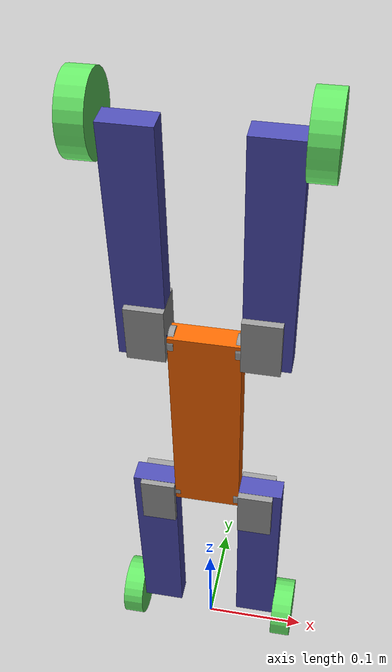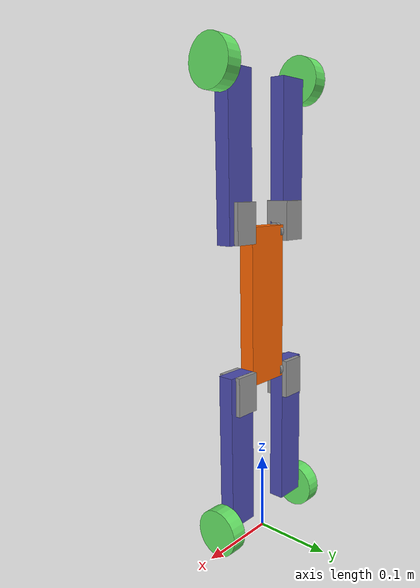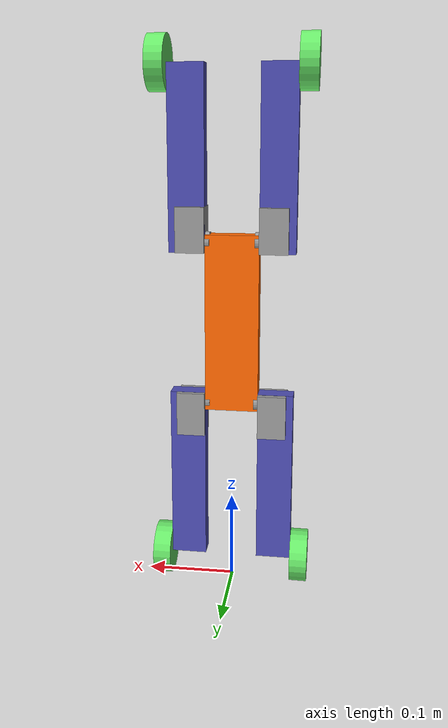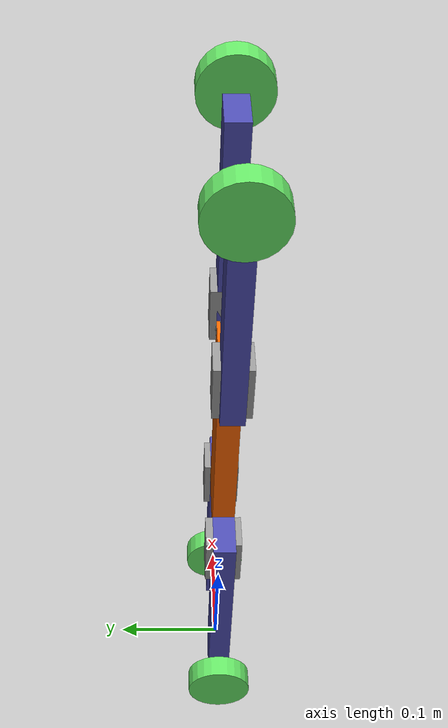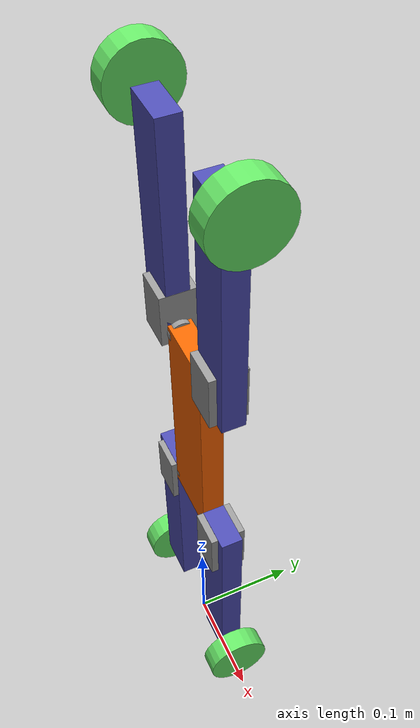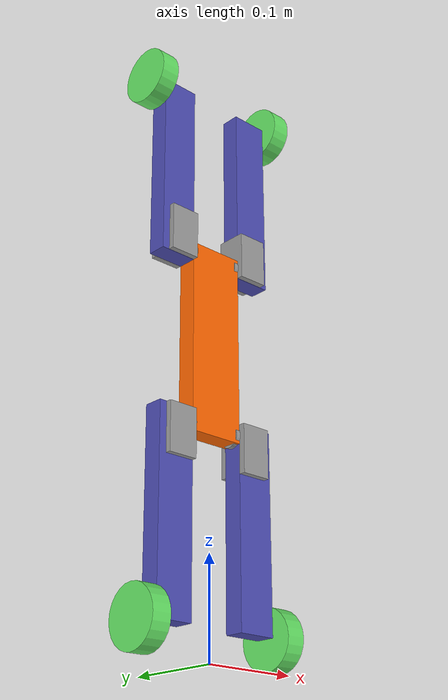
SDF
<?xml version='1.0'?>
<sdf version='1.6'>
  <model name='rovservo'>
    <link name='left_leg'>
      <inertial>
        <mass>1</mass>
        <inertia>
          <ixx>0.166667</ixx>
          <ixy>0</ixy>
          <ixz>0</ixz>
          <iyy>0.166667</iyy>
          <iyz>0</iyz>
          <izz>0.166667</izz>
        </inertia>
        <pose frame=''>0 0 0 0 -0 0</pose>
      </inertial>
      <pose frame=''>-0.05 0 0.13 0 -0 0</pose>
      <gravity>1</gravity>
      <self_collide>0</self_collide>
      <kinematic>0</kinematic>
      <enable_wind>0</enable_wind>
      <visual name='visual'>
        <pose frame=''>0 0 0 0 -0 0</pose>
        <geometry>
          <box>
            <size>0.04 0.02 0.2</size>
          </box>
        </geometry>
        <material>
          <lighting>1</lighting>
          <script>
            <uri>file://media/materials/scripts/gazebo.material</uri>
            <name>Gazebo/Grey</name>
          </script>
          <shader type='vertex'>
            <normal_map>__default__</normal_map>
          </shader>
          <ambient>0.3 0.3 0.7 1</ambient>
          <diffuse>0.7 0.7 0.7 1</diffuse>
          <specular>0.01 0.01 0.01 1</specular>
          <emissive>0 0 0 1</emissive>
        </material>
        <transparency>0</transparency>
        <cast_shadows>1</cast_shadows>
      </visual>
      <collision name='collision'>
        <laser_retro>0</laser_retro>
        <max_contacts>10</max_contacts>
        <pose frame=''>0 0 0 0 -0 0</pose>
        <geometry>
          <box>
            <size>0.04 0.02 0.2</size>
          </box>
        </geometry>
        <surface>
          <friction>
            <ode>
              <mu>1</mu>
              <mu2>1</mu2>
              <fdir1>0 0 0</fdir1>
              <slip1>0</slip1>
              <slip2>0</slip2>
            </ode>
            <torsional>
              <coefficient>1</coefficient>
              <patch_radius>0</patch_radius>
              <surface_radius>0</surface_radius>
              <use_patch_radius>1</use_patch_radius>
              <ode>
                <slip>0</slip>
              </ode>
            </torsional>
          </friction>
          <bounce>
            <restitution_coefficient>0</restitution_coefficient>
            <threshold>1e+06</threshold>
          </bounce>
          <contact>
            <collide_without_contact>0</collide_without_contact>
            <collide_without_contact_bitmask>1</collide_without_contact_bitmask>
            <collide_bitmask>1</collide_bitmask>
            <ode>
              <soft_cfm>0</soft_cfm>
              <soft_erp>0.2</soft_erp>
              <kp>1e+13</kp>
              <kd>1</kd>
              <max_vel>0.01</max_vel>
              <min_depth>0</min_depth>
            </ode>
            <bullet>
              <split_impulse>1</split_impulse>
              <split_impulse_penetration_threshold>-0.01</split_impulse_penetration_threshold>
              <soft_cfm>0</soft_cfm>
              <soft_erp>0.2</soft_erp>
              <kp>1e+13</kp>
              <kd>1</kd>
            </bullet>
          </contact>
        </surface>
      </collision>
    </link>
    <link name='body'>
      <inertial>
        <mass>1</mass>
        <inertia>
          <ixx>0.166667</ixx>
          <ixy>0</ixy>
          <ixz>0</ixz>
          <iyy>0.166667</iyy>
          <iyz>0</iyz>
          <izz>0.166667</izz>
        </inertia>
        <pose frame=''>0 0 0 0 -0 0</pose>
      </inertial>
      <pose frame=''>0 0 0.31 0 -0 0</pose>
      <gravity>1</gravity>
      <self_collide>0</self_collide>
      <kinematic>0</kinematic>
      <enable_wind>0</enable_wind>
      <visual name='visual'>
        <pose frame=''>0 0 0 0 -0 0</pose>
        <geometry>
          <box>
            <size>0.06 0.02 0.2</size>
          </box>
        </geometry>
        <material>
          <lighting>1</lighting>
          <script>
            <uri>file://media/materials/scripts/gazebo.material</uri>
            <name>Gazebo/Grey</name>
          </script>
          <shader type='vertex'>
            <normal_map>__default__</normal_map>
          </shader>
          <ambient>1 0.4 0 1</ambient>
          <diffuse>0.7 0.7 0.7 1</diffuse>
          <specular>0.01 0.01 0.01 1</specular>
          <emissive>0 0 0 1</emissive>
        </material>
        <transparency>0</transparency>
        <cast_shadows>1</cast_shadows>
      </visual>
      <collision name='collision'>
        <laser_retro>0</laser_retro>
        <max_contacts>10</max_contacts>
        <pose frame=''>0 0 0 0 -0 0</pose>
        <geometry>
          <box>
            <size>0.06 0.02 0.2</size>
          </box>
        </geometry>
        <surface>
          <friction>
            <ode>
              <mu>1</mu>
              <mu2>1</mu2>
              <fdir1>0 0 0</fdir1>
              <slip1>0</slip1>
              <slip2>0</slip2>
            </ode>
            <torsional>
              <coefficient>1</coefficient>
              <patch_radius>0</patch_radius>
              <surface_radius>0</surface_radius>
              <use_patch_radius>1</use_patch_radius>
              <ode>
                <slip>0</slip>
              </ode>
            </torsional>
          </friction>
          <bounce>
            <restitution_coefficient>0</restitution_coefficient>
            <threshold>1e+06</threshold>
          </bounce>
          <contact>
            <collide_without_contact>0</collide_without_contact>
            <collide_without_contact_bitmask>1</collide_without_contact_bitmask>
            <collide_bitmask>1</collide_bitmask>
            <ode>
              <soft_cfm>0</soft_cfm>
              <soft_erp>0.2</soft_erp>
              <kp>1e+13</kp>
              <kd>1</kd>
              <max_vel>0.01</max_vel>
              <min_depth>0</min_depth>
            </ode>
            <bullet>
              <split_impulse>1</split_impulse>
              <split_impulse_penetration_threshold>-0.01</split_impulse_penetration_threshold>
              <soft_cfm>0</soft_cfm>
              <soft_erp>0.2</soft_erp>
              <kp>1e+13</kp>
              <kd>1</kd>
            </bullet>
          </contact>
        </surface>
      </collision>
    </link>
    <link name='left_arm'>
      <inertial>
        <mass>1</mass>
        <inertia>
          <ixx>0.166667</ixx>
          <ixy>0</ixy>
          <ixz>0</ixz>
          <iyy>0.166667</iyy>
          <iyz>0</iyz>
          <izz>0.166667</izz>
        </inertia>
        <pose frame=''>0 0 0 0 -0 0</pose>
      </inertial>
      <pose frame=''>-0.05 0 0.49 0 -0 0</pose>
      <gravity>1</gravity>
      <self_collide>0</self_collide>
      <kinematic>0</kinematic>
      <enable_wind>0</enable_wind>
      <visual name='visual'>
        <pose frame=''>0 0 0 0 -0 0</pose>
        <geometry>
          <box>
            <size>0.04 0.02 0.2</size>
          </box>
        </geometry>
        <material>
          <lighting>1</lighting>
          <script>
            <uri>file://media/materials/scripts/gazebo.material</uri>
            <name>Gazebo/Grey</name>
          </script>
          <shader type='vertex'>
            <normal_map>__default__</normal_map>
          </shader>
          <ambient>0.3 0.3 0.7 1</ambient>
          <diffuse>0.7 0.7 0.7 1</diffuse>
          <specular>0.01 0.01 0.01 1</specular>
          <emissive>0 0 0 1</emissive>
        </material>
        <transparency>0</transparency>
        <cast_shadows>1</cast_shadows>
      </visual>
      <collision name='collision'>
        <laser_retro>0</laser_retro>
        <max_contacts>10</max_contacts>
        <pose frame=''>0 0 0 0 -0 0</pose>
        <geometry>
          <box>
            <size>0.04 0.02 0.2</size>
          </box>
        </geometry>
        <surface>
          <friction>
            <ode>
              <mu>1</mu>
              <mu2>1</mu2>
              <fdir1>0 0 0</fdir1>
              <slip1>0</slip1>
              <slip2>0</slip2>
            </ode>
            <torsional>
              <coefficient>1</coefficient>
              <patch_radius>0</patch_radius>
              <surface_radius>0</surface_radius>
              <use_patch_radius>1</use_patch_radius>
              <ode>
                <slip>0</slip>
              </ode>
            </torsional>
          </friction>
          <bounce>
            <restitution_coefficient>0</restitution_coefficient>
            <threshold>1e+06</threshold>
          </bounce>
          <contact>
            <collide_without_contact>0</collide_without_contact>
            <collide_without_contact_bitmask>1</collide_without_contact_bitmask>
            <collide_bitmask>1</collide_bitmask>
            <ode>
              <soft_cfm>0</soft_cfm>
              <soft_erp>0.2</soft_erp>
              <kp>1e+13</kp>
              <kd>1</kd>
              <max_vel>0.01</max_vel>
              <min_depth>0</min_depth>
            </ode>
            <bullet>
              <split_impulse>1</split_impulse>
              <split_impulse_penetration_threshold>-0.01</split_impulse_penetration_threshold>
              <soft_cfm>0</soft_cfm>
              <soft_erp>0.2</soft_erp>
              <kp>1e+13</kp>
              <kd>1</kd>
            </bullet>
          </contact>
        </surface>
      </collision>
    </link>
    <link name='left_arm_wheel'>
      <inertial>
        <mass>1</mass>
        <inertia>
          <ixx>0.145833</ixx>
          <ixy>0</ixy>
          <ixz>0</ixz>
          <iyy>0.145833</iyy>
          <iyz>0</iyz>
          <izz>0.125</izz>
        </inertia>
        <pose frame=''>0 0 0 0 -0 0</pose>
      </inertial>
      <pose frame=''>-0.08 0 0.59 0 -0 0</pose>
      <gravity>1</gravity>
      <self_collide>1</self_collide>
      <kinematic>0</kinematic>
      <enable_wind>0</enable_wind>
      <visual name='visual'>
        <pose frame=''>0 0 0 0 1.5608 0</pose>
        <geometry>
          <cylinder>
            <radius>0.03</radius>
            <length>0.02</length>
          </cylinder>
        </geometry>
        <material>
          <lighting>1</lighting>
          <script>
            <uri>file://media/materials/scripts/gazebo.material</uri>
            <name>Gazebo/Grey</name>
          </script>
          <shader type='vertex'>
            <normal_map>__default__</normal_map>
          </shader>
          <ambient>0.3 0.3 0.3 1</ambient>
          <diffuse>0.4 0.9 0.4 1</diffuse>
          <specular>0.01 0.01 0.01 1</specular>
          <emissive>0 0 0 1</emissive>
        </material>
        <transparency>0</transparency>
        <cast_shadows>1</cast_shadows>
      </visual>
      <collision name='collision'>
        <laser_retro>0</laser_retro>
        <max_contacts>10</max_contacts>
        <pose frame=''>0 0 0 0 1.5608 0</pose>
        <geometry>
          <cylinder>
            <radius>0.03</radius>
            <length>0.02</length>
          </cylinder>
        </geometry>
        <surface>
          <friction>
            <ode>
              <mu>1</mu>
              <mu2>1</mu2>
              <fdir1>0 0 0</fdir1>
              <slip1>0</slip1>
              <slip2>0</slip2>
            </ode>
            <torsional>
              <coefficient>1</coefficient>
              <patch_radius>0</patch_radius>
              <surface_radius>0</surface_radius>
              <use_patch_radius>1</use_patch_radius>
              <ode>
                <slip>0</slip>
              </ode>
            </torsional>
          </friction>
          <bounce>
            <restitution_coefficient>0</restitution_coefficient>
            <threshold>1e+06</threshold>
          </bounce>
          <contact>
            <collide_without_contact>0</collide_without_contact>
            <collide_without_contact_bitmask>1</collide_without_contact_bitmask>
            <collide_bitmask>1</collide_bitmask>
            <ode>
              <soft_cfm>0</soft_cfm>
              <soft_erp>0.2</soft_erp>
              <kp>1e+13</kp>
              <kd>1</kd>
              <max_vel>0.01</max_vel>
              <min_depth>0</min_depth>
            </ode>
            <bullet>
              <split_impulse>1</split_impulse>
              <split_impulse_penetration_threshold>-0.01</split_impulse_penetration_threshold>
              <soft_cfm>0</soft_cfm>
              <soft_erp>0.2</soft_erp>
              <kp>1e+13</kp>
              <kd>1</kd>
            </bullet>
          </contact>
        </surface>
      </collision>
    </link>
    <link name='left_leg_wheel'>
      <inertial>
        <mass>1</mass>
        <inertia>
          <ixx>0.145833</ixx>
          <ixy>0</ixy>
          <ixz>0</ixz>
          <iyy>0.145833</iyy>
          <iyz>0</iyz>
          <izz>0.125</izz>
        </inertia>
        <pose frame=''>0 0 0 0 -0 0</pose>
      </inertial>
      <pose frame=''>-0.08 0 0.03 0 -0 0</pose>
      <gravity>1</gravity>
      <self_collide>1</self_collide>
      <kinematic>0</kinematic>
      <enable_wind>0</enable_wind>
      <visual name='visual'>
        <pose frame=''>0 0 0 0 1.5608 0</pose>
        <geometry>
          <cylinder>
            <radius>0.03</radius>
            <length>0.02</length>
          </cylinder>
        </geometry>
        <material>
          <lighting>1</lighting>
          <script>
            <uri>file://media/materials/scripts/gazebo.material</uri>
            <name>Gazebo/Grey</name>
          </script>
          <shader type='vertex'>
            <normal_map>__default__</normal_map>
          </shader>
          <ambient>0.3 0.3 0.3 1</ambient>
          <diffuse>0.4 0.9 0.4 1</diffuse>
          <specular>0.01 0.01 0.01 1</specular>
          <emissive>0 0 0 1</emissive>
        </material>
        <transparency>0</transparency>
        <cast_shadows>1</cast_shadows>
      </visual>
      <collision name='collision'>
        <laser_retro>0</laser_retro>
        <max_contacts>10</max_contacts>
        <pose frame=''>0 0 0 0 1.5608 0</pose>
        <geometry>
          <cylinder>
            <radius>0.03</radius>
            <length>0.02</length>
          </cylinder>
        </geometry>
        <surface>
          <friction>
            <ode>
              <mu>1</mu>
              <mu2>1</mu2>
              <fdir1>0 0 0</fdir1>
              <slip1>0</slip1>
              <slip2>0</slip2>
            </ode>
            <torsional>
              <coefficient>1</coefficient>
              <patch_radius>0</patch_radius>
              <surface_radius>0</surface_radius>
              <use_patch_radius>1</use_patch_radius>
              <ode>
                <slip>0</slip>
              </ode>
            </torsional>
          </friction>
          <bounce>
            <restitution_coefficient>0</restitution_coefficient>
            <threshold>1e+06</threshold>
          </bounce>
          <contact>
            <collide_without_contact>0</collide_without_contact>
            <collide_without_contact_bitmask>1</collide_without_contact_bitmask>
            <collide_bitmask>1</collide_bitmask>
            <ode>
              <soft_cfm>0</soft_cfm>
              <soft_erp>0.2</soft_erp>
              <kp>1e+13</kp>
              <kd>1</kd>
              <max_vel>0.01</max_vel>
              <min_depth>0</min_depth>
            </ode>
            <bullet>
              <split_impulse>1</split_impulse>
              <split_impulse_penetration_threshold>-0.01</split_impulse_penetration_threshold>
              <soft_cfm>0</soft_cfm>
              <soft_erp>0.2</soft_erp>
              <kp>1e+13</kp>
              <kd>1</kd>
            </bullet>
          </contact>
        </surface>
      </collision>
    </link>
    <link name='right_arm'>
      <inertial>
        <mass>1</mass>
        <inertia>
          <ixx>0.166667</ixx>
          <ixy>0</ixy>
          <ixz>0</ixz>
          <iyy>0.166667</iyy>
          <iyz>0</iyz>
          <izz>0.166667</izz>
        </inertia>
        <pose frame=''>0 0 0 0 -0 0</pose>
      </inertial>
      <pose frame=''>0.05 0 0.49 0 -0 0</pose>
      <gravity>1</gravity>
      <self_collide>0</self_collide>
      <kinematic>0</kinematic>
      <enable_wind>0</enable_wind>
      <visual name='visual'>
        <pose frame=''>0 0 0 0 -0 0</pose>
        <geometry>
          <box>
            <size>0.04 0.02 0.2</size>
          </box>
        </geometry>
        <material>
          <lighting>1</lighting>
          <script>
            <uri>file://media/materials/scripts/gazebo.material</uri>
            <name>Gazebo/Grey</name>
          </script>
          <shader type='vertex'>
            <normal_map>__default__</normal_map>
          </shader>
          <ambient>0.3 0.3 0.7 1</ambient>
          <diffuse>0.7 0.7 0.7 1</diffuse>
          <specular>0.01 0.01 0.01 1</specular>
          <emissive>0 0 0 1</emissive>
        </material>
        <transparency>0</transparency>
        <cast_shadows>1</cast_shadows>
      </visual>
      <collision name='collision'>
        <laser_retro>0</laser_retro>
        <max_contacts>10</max_contacts>
        <pose frame=''>0 0 0 0 -0 0</pose>
        <geometry>
          <box>
            <size>0.04 0.02 0.2</size>
          </box>
        </geometry>
        <surface>
          <friction>
            <ode>
              <mu>1</mu>
              <mu2>1</mu2>
              <fdir1>0 0 0</fdir1>
              <slip1>0</slip1>
              <slip2>0</slip2>
            </ode>
            <torsional>
              <coefficient>1</coefficient>
              <patch_radius>0</patch_radius>
              <surface_radius>0</surface_radius>
              <use_patch_radius>1</use_patch_radius>
              <ode>
                <slip>0</slip>
              </ode>
            </torsional>
          </friction>
          <bounce>
            <restitution_coefficient>0</restitution_coefficient>
            <threshold>1e+06</threshold>
          </bounce>
          <contact>
            <collide_without_contact>0</collide_without_contact>
            <collide_without_contact_bitmask>1</collide_without_contact_bitmask>
            <collide_bitmask>1</collide_bitmask>
            <ode>
              <soft_cfm>0</soft_cfm>
              <soft_erp>0.2</soft_erp>
              <kp>1e+13</kp>
              <kd>1</kd>
              <max_vel>0.01</max_vel>
              <min_depth>0</min_depth>
            </ode>
            <bullet>
              <split_impulse>1</split_impulse>
              <split_impulse_penetration_threshold>-0.01</split_impulse_penetration_threshold>
              <soft_cfm>0</soft_cfm>
              <soft_erp>0.2</soft_erp>
              <kp>1e+13</kp>
              <kd>1</kd>
            </bullet>
          </contact>
        </surface>
      </collision>
    </link>
    <link name='right_arm_wheel'>
      <inertial>
        <mass>1</mass>
        <inertia>
          <ixx>0.145833</ixx>
          <ixy>0</ixy>
          <ixz>0</ixz>
          <iyy>0.145833</iyy>
          <iyz>0</iyz>
          <izz>0.125</izz>
        </inertia>
        <pose frame=''>0 0 0 0 -0 0</pose>
      </inertial>
      <pose frame=''>0.08 0 0.59 0 -0 0</pose>
      <gravity>1</gravity>
      <self_collide>1</self_collide>
      <kinematic>0</kinematic>
      <enable_wind>0</enable_wind>
      <visual name='visual'>
        <pose frame=''>0 0 0 0 1.5608 0</pose>
        <geometry>
          <cylinder>
            <radius>0.03</radius>
            <length>0.02</length>
          </cylinder>
        </geometry>
        <material>
          <lighting>1</lighting>
          <script>
            <uri>file://media/materials/scripts/gazebo.material</uri>
            <name>Gazebo/Grey</name>
          </script>
          <shader type='vertex'>
            <normal_map>__default__</normal_map>
          </shader>
          <ambient>0.3 0.3 0.3 1</ambient>
          <diffuse>0.4 0.9 0.4 1</diffuse>
          <specular>0.01 0.01 0.01 1</specular>
          <emissive>0 0 0 1</emissive>
        </material>
        <transparency>0</transparency>
        <cast_shadows>1</cast_shadows>
      </visual>
      <collision name='collision'>
        <laser_retro>0</laser_retro>
        <max_contacts>10</max_contacts>
        <pose frame=''>0 0 0 0 1.5608 0</pose>
        <geometry>
          <cylinder>
            <radius>0.03</radius>
            <length>0.02</length>
          </cylinder>
        </geometry>
        <surface>
          <friction>
            <ode>
              <mu>1</mu>
              <mu2>1</mu2>
              <fdir1>0 0 0</fdir1>
              <slip1>0</slip1>
              <slip2>0</slip2>
            </ode>
            <torsional>
              <coefficient>1</coefficient>
              <patch_radius>0</patch_radius>
              <surface_radius>0</surface_radius>
              <use_patch_radius>1</use_patch_radius>
              <ode>
                <slip>0</slip>
              </ode>
            </torsional>
          </friction>
          <bounce>
            <restitution_coefficient>0</restitution_coefficient>
            <threshold>1e+06</threshold>
          </bounce>
          <contact>
            <collide_without_contact>0</collide_without_contact>
            <collide_without_contact_bitmask>1</collide_without_contact_bitmask>
            <collide_bitmask>1</collide_bitmask>
            <ode>
              <soft_cfm>0</soft_cfm>
              <soft_erp>0.2</soft_erp>
              <kp>1e+13</kp>
              <kd>1</kd>
              <max_vel>0.01</max_vel>
              <min_depth>0</min_depth>
            </ode>
            <bullet>
              <split_impulse>1</split_impulse>
              <split_impulse_penetration_threshold>-0.01</split_impulse_penetration_threshold>
              <soft_cfm>0</soft_cfm>
              <soft_erp>0.2</soft_erp>
              <kp>1e+13</kp>
              <kd>1</kd>
            </bullet>
          </contact>
        </surface>
      </collision>
    </link>
    <link name='right_leg'>
      <inertial>
        <mass>1</mass>
        <inertia>
          <ixx>0.166667</ixx>
          <ixy>0</ixy>
          <ixz>0</ixz>
          <iyy>0.166667</iyy>
          <iyz>0</iyz>
          <izz>0.166667</izz>
        </inertia>
        <pose frame=''>0 0 0 0 -0 0</pose>
      </inertial>
      <pose frame=''>0.05 0 0.13 0 -0 0</pose>
      <gravity>1</gravity>
      <self_collide>0</self_collide>
      <kinematic>0</kinematic>
      <enable_wind>0</enable_wind>
      <visual name='visual'>
        <pose frame=''>0 0 0 0 -0 0</pose>
        <geometry>
          <box>
            <size>0.04 0.02 0.2</size>
          </box>
        </geometry>
        <material>
          <lighting>1</lighting>
          <script>
            <uri>file://media/materials/scripts/gazebo.material</uri>
            <name>Gazebo/Grey</name>
          </script>
          <shader type='vertex'>
            <normal_map>__default__</normal_map>
          </shader>
          <ambient>0.3 0.3 0.7 1</ambient>
          <diffuse>0.7 0.7 0.7 1</diffuse>
          <specular>0.01 0.01 0.01 1</specular>
          <emissive>0 0 0 1</emissive>
        </material>
        <transparency>0</transparency>
        <cast_shadows>1</cast_shadows>
      </visual>
      <collision name='collision'>
        <laser_retro>0</laser_retro>
        <max_contacts>10</max_contacts>
        <pose frame=''>0 0 0 0 -0 0</pose>
        <geometry>
          <box>
            <size>0.04 0.02 0.2</size>
          </box>
        </geometry>
        <surface>
          <friction>
            <ode>
              <mu>1</mu>
              <mu2>1</mu2>
              <fdir1>0 0 0</fdir1>
              <slip1>0</slip1>
              <slip2>0</slip2>
            </ode>
            <torsional>
              <coefficient>1</coefficient>
              <patch_radius>0</patch_radius>
              <surface_radius>0</surface_radius>
              <use_patch_radius>1</use_patch_radius>
              <ode>
                <slip>0</slip>
              </ode>
            </torsional>
          </friction>
          <bounce>
            <restitution_coefficient>0</restitution_coefficient>
            <threshold>1e+06</threshold>
          </bounce>
          <contact>
            <collide_without_contact>0</collide_without_contact>
            <collide_without_contact_bitmask>1</collide_without_contact_bitmask>
            <collide_bitmask>1</collide_bitmask>
            <ode>
              <soft_cfm>0</soft_cfm>
              <soft_erp>0.2</soft_erp>
              <kp>1e+13</kp>
              <kd>1</kd>
              <max_vel>0.01</max_vel>
              <min_depth>0</min_depth>
            </ode>
            <bullet>
              <split_impulse>1</split_impulse>
              <split_impulse_penetration_threshold>-0.01</split_impulse_penetration_threshold>
              <soft_cfm>0</soft_cfm>
              <soft_erp>0.2</soft_erp>
              <kp>1e+13</kp>
              <kd>1</kd>
            </bullet>
          </contact>
        </surface>
      </collision>
    </link>
    <link name='right_leg_wheel'>
      <inertial>
        <mass>1</mass>
        <inertia>
          <ixx>0.145833</ixx>
          <ixy>0</ixy>
          <ixz>0</ixz>
          <iyy>0.145833</iyy>
          <iyz>0</iyz>
          <izz>0.125</izz>
        </inertia>
        <pose frame=''>0 0 0 0 -0 0</pose>
      </inertial>
      <pose frame=''>0.08 0 0.03 0 -0 0</pose>
      <gravity>1</gravity>
      <self_collide>1</self_collide>
      <kinematic>0</kinematic>
      <enable_wind>0</enable_wind>
      <visual name='visual'>
        <pose frame=''>0 0 0 0 1.5608 0</pose>
        <geometry>
          <cylinder>
            <radius>0.03</radius>
            <length>0.02</length>
          </cylinder>
        </geometry>
        <material>
          <lighting>1</lighting>
          <script>
            <uri>file://media/materials/scripts/gazebo.material</uri>
            <name>Gazebo/Grey</name>
          </script>
          <shader type='vertex'>
            <normal_map>__default__</normal_map>
          </shader>
          <ambient>0.3 0.3 0.3 1</ambient>
          <diffuse>0.4 0.9 0.4 1</diffuse>
          <specular>0.01 0.01 0.01 1</specular>
          <emissive>0 0 0 1</emissive>
        </material>
        <transparency>0</transparency>
        <cast_shadows>1</cast_shadows>
      </visual>
      <collision name='collision'>
        <laser_retro>0</laser_retro>
        <max_contacts>10</max_contacts>
        <pose frame=''>0 0 0 0 1.5608 0</pose>
        <geometry>
          <cylinder>
            <radius>0.03</radius>
            <length>0.02</length>
          </cylinder>
        </geometry>
        <surface>
          <friction>
            <ode>
              <mu>1</mu>
              <mu2>1</mu2>
              <fdir1>0 0 0</fdir1>
              <slip1>0</slip1>
              <slip2>0</slip2>
            </ode>
            <torsional>
              <coefficient>1</coefficient>
              <patch_radius>0</patch_radius>
              <surface_radius>0</surface_radius>
              <use_patch_radius>1</use_patch_radius>
              <ode>
                <slip>0</slip>
              </ode>
            </torsional>
          </friction>
          <bounce>
            <restitution_coefficient>0</restitution_coefficient>
            <threshold>1e+06</threshold>
          </bounce>
          <contact>
            <collide_without_contact>0</collide_without_contact>
            <collide_without_contact_bitmask>1</collide_without_contact_bitmask>
            <collide_bitmask>1</collide_bitmask>
            <ode>
              <soft_cfm>0</soft_cfm>
              <soft_erp>0.2</soft_erp>
              <kp>1e+13</kp>
              <kd>1</kd>
              <max_vel>0.01</max_vel>
              <min_depth>0</min_depth>
            </ode>
            <bullet>
              <split_impulse>1</split_impulse>
              <split_impulse_penetration_threshold>-0.01</split_impulse_penetration_threshold>
              <soft_cfm>0</soft_cfm>
              <soft_erp>0.2</soft_erp>
              <kp>1e+13</kp>
              <kd>1</kd>
            </bullet>
          </contact>
        </surface>
      </collision>
    </link>
    <model name='servo_ax12a'>
      <plugin name='ax12a' filename='libservo.so'>
        <topic>/gazebo/servos/ax12a</topic>
      </plugin>
      <link name='Body'>
        <inertial>
          <mass>0.05</mass>
          <inertia>
            <ixx>1.643e-05</ixx>
            <ixy>0</ixy>
            <ixz>0</ixz>
            <iyy>1.468e-05</iyy>
            <iyz>0</iyz>
            <izz>1.028e-05</izz>
          </inertia>
          <pose frame=''>0 0 0 0 -0 0</pose>
        </inertial>
        <pose frame=''>0 0 0 0 -0 0</pose>
        <gravity>1</gravity>
        <self_collide>0</self_collide>
        <kinematic>0</kinematic>
        <enable_wind>0</enable_wind>
        <visual name='visual'>
          <pose frame=''>0 0 0 0 -0 0</pose>
          <geometry>
            <box>
              <size>0.032 0.032 0.05</size>
            </box>
          </geometry>
          <material>
            <lighting>1</lighting>
            <script>
              <uri>file://media/materials/scripts/gazebo.material</uri>
              <name>Gazebo/Grey</name>
            </script>
            <shader type='vertex'>
              <normal_map>__default__</normal_map>
            </shader>
            <ambient>0.1 0.1 0.1 1</ambient>
            <diffuse>0.1 0.1 0.1 1</diffuse>
            <specular>0.01 0.01 0.01 1</specular>
            <emissive>0 0 0 1</emissive>
          </material>
          <transparency>0</transparency>
          <cast_shadows>1</cast_shadows>
        </visual>
        <collision name='collision'>
          <laser_retro>0</laser_retro>
          <max_contacts>10</max_contacts>
          <pose frame=''>0 0 0 0 -0 0</pose>
          <geometry>
            <box>
              <size>0.032 0.032 0.05</size>
            </box>
          </geometry>
          <surface>
            <friction>
              <ode>
                <mu>1</mu>
                <mu2>1</mu2>
                <fdir1>0 0 0</fdir1>
                <slip1>0</slip1>
                <slip2>0</slip2>
              </ode>
              <torsional>
                <coefficient>1</coefficient>
                <patch_radius>0</patch_radius>
                <surface_radius>0</surface_radius>
                <use_patch_radius>1</use_patch_radius>
                <ode>
                  <slip>0</slip>
                </ode>
              </torsional>
            </friction>
            <bounce>
              <restitution_coefficient>0</restitution_coefficient>
              <threshold>1e+06</threshold>
            </bounce>
            <contact>
              <collide_without_contact>0</collide_without_contact>
              <collide_without_contact_bitmask>1</collide_without_contact_bitmask>
              <collide_bitmask>1</collide_bitmask>
              <ode>
                <soft_cfm>0</soft_cfm>
                <soft_erp>0.2</soft_erp>
                <kp>1e+13</kp>
                <kd>1</kd>
                <max_vel>0.01</max_vel>
                <min_depth>0</min_depth>
              </ode>
              <bullet>
                <split_impulse>1</split_impulse>
                <split_impulse_penetration_threshold>-0.01</split_impulse_penetration_threshold>
                <soft_cfm>0</soft_cfm>
                <soft_erp>0.2</soft_erp>
                <kp>1e+13</kp>
                <kd>1</kd>
              </bullet>
            </contact>
          </surface>
        </collision>
      </link>
      <link name='Wheel'>
        <inertial>
          <mass>0.005</mass>
          <inertia>
            <ixx>1.6e-07</ixx>
            <ixy>0</ixy>
            <ixz>0</ixz>
            <iyy>1.6e-07</iyy>
            <iyz>0</iyz>
            <izz>3e-07</izz>
          </inertia>
          <pose frame=''>0 0 0 0 -0 0</pose>
        </inertial>
        <pose frame=''>0 -0.0185 0.0135 1.5708 -0 0</pose>
        <gravity>1</gravity>
        <self_collide>0</self_collide>
        <kinematic>0</kinematic>
        <enable_wind>0</enable_wind>
        <visual name='visual'>
          <pose frame=''>0 0 0 0 -0 0</pose>
          <geometry>
            <cylinder>
              <radius>0.011</radius>
              <length>0.005</length>
            </cylinder>
          </geometry>
          <material>
            <lighting>1</lighting>
            <script>
              <uri>file://media/materials/scripts/gazebo.material</uri>
              <name>Gazebo/Grey</name>
            </script>
            <shader type='vertex'>
              <normal_map>__default__</normal_map>
            </shader>
            <ambient>0.3 0.3 0.3 1</ambient>
            <diffuse>0.7 0.7 0.7 1</diffuse>
            <specular>0.01 0.01 0.01 1</specular>
            <emissive>0 0 0 1</emissive>
          </material>
          <transparency>0</transparency>
          <cast_shadows>1</cast_shadows>
        </visual>
        <collision name='collision'>
          <laser_retro>0</laser_retro>
          <max_contacts>10</max_contacts>
          <pose frame=''>0 0 0 0 -0 0</pose>
          <geometry>
            <cylinder>
              <radius>0.011</radius>
              <length>0.005</length>
            </cylinder>
          </geometry>
          <surface>
            <friction>
              <ode>
                <mu>1</mu>
                <mu2>1</mu2>
                <fdir1>0 0 0</fdir1>
                <slip1>0</slip1>
                <slip2>0</slip2>
              </ode>
              <torsional>
                <coefficient>1</coefficient>
                <patch_radius>0</patch_radius>
                <surface_radius>0</surface_radius>
                <use_patch_radius>1</use_patch_radius>
                <ode>
                  <slip>0</slip>
                </ode>
              </torsional>
            </friction>
            <bounce>
              <restitution_coefficient>0</restitution_coefficient>
              <threshold>1e+06</threshold>
            </bounce>
            <contact>
              <collide_without_contact>0</collide_without_contact>
              <collide_without_contact_bitmask>1</collide_without_contact_bitmask>
              <collide_bitmask>1</collide_bitmask>
              <ode>
                <soft_cfm>0</soft_cfm>
                <soft_erp>0.2</soft_erp>
                <kp>1e+13</kp>
                <kd>1</kd>
                <max_vel>0.01</max_vel>
                <min_depth>0</min_depth>
              </ode>
              <bullet>
                <split_impulse>1</split_impulse>
                <split_impulse_penetration_threshold>-0.01</split_impulse_penetration_threshold>
                <soft_cfm>0</soft_cfm>
                <soft_erp>0.2</soft_erp>
                <kp>1e+13</kp>
                <kd>1</kd>
              </bullet>
            </contact>
          </surface>
        </collision>
      </link>
      <joint name='j_Body_Wheel' type='revolute'>
        <parent>Body</parent>
        <child>Wheel</child>
        <pose frame=''>0 0 0 0 -0 0</pose>
        <axis>
          <xyz>0 0 1</xyz>
          <use_parent_model_frame>0</use_parent_model_frame>
          <limit>
            <lower>-1.79769e+308</lower>
            <upper>1.79769e+308</upper>
            <effort>-1</effort>
            <velocity>-1</velocity>
          </limit>
          <dynamics>
            <spring_reference>0</spring_reference>
            <spring_stiffness>0</spring_stiffness>
            <damping>0</damping>
          </dynamics>
        </axis>
        <physics>
          <ode>
            <limit>
              <cfm>0</cfm>
              <erp>0.2</erp>
            </limit>
            <suspension>
              <cfm>0</cfm>
              <erp>0.2</erp>
            </suspension>
          </ode>
        </physics>
      </joint>
      <static>0</static>
      <allow_auto_disable>1</allow_auto_disable>
      <pose frame=''>-0.045981 0.000174 0.415139 3.13973 -1e-06 -1.57243</pose>
    </model>
    <model name='servo_ax12a_0'>
      <plugin name='ax12a' filename='libservo.so'>
        <topic>/gazebo/servos/ax12a</topic>
      </plugin>
      <link name='Body'>
        <inertial>
          <mass>0.05</mass>
          <inertia>
            <ixx>1.643e-05</ixx>
            <ixy>0</ixy>
            <ixz>0</ixz>
            <iyy>1.468e-05</iyy>
            <iyz>0</iyz>
            <izz>1.028e-05</izz>
          </inertia>
          <pose frame=''>0 0 0 0 -0 0</pose>
        </inertial>
        <pose frame=''>0 0 0 0 -0 0</pose>
        <gravity>1</gravity>
        <self_collide>0</self_collide>
        <kinematic>0</kinematic>
        <enable_wind>0</enable_wind>
        <visual name='visual'>
          <pose frame=''>0 0 0 0 -0 0</pose>
          <geometry>
            <box>
              <size>0.032 0.032 0.05</size>
            </box>
          </geometry>
          <material>
            <lighting>1</lighting>
            <script>
              <uri>file://media/materials/scripts/gazebo.material</uri>
              <name>Gazebo/Grey</name>
            </script>
            <shader type='vertex'>
              <normal_map>__default__</normal_map>
            </shader>
            <ambient>0.1 0.1 0.1 1</ambient>
            <diffuse>0.1 0.1 0.1 1</diffuse>
            <specular>0.01 0.01 0.01 1</specular>
            <emissive>0 0 0 1</emissive>
          </material>
          <transparency>0</transparency>
          <cast_shadows>1</cast_shadows>
        </visual>
        <collision name='collision'>
          <laser_retro>0</laser_retro>
          <max_contacts>10</max_contacts>
          <pose frame=''>0 0 0 0 -0 0</pose>
          <geometry>
            <box>
              <size>0.032 0.032 0.05</size>
            </box>
          </geometry>
          <surface>
            <friction>
              <ode>
                <mu>1</mu>
                <mu2>1</mu2>
                <fdir1>0 0 0</fdir1>
                <slip1>0</slip1>
                <slip2>0</slip2>
              </ode>
              <torsional>
                <coefficient>1</coefficient>
                <patch_radius>0</patch_radius>
                <surface_radius>0</surface_radius>
                <use_patch_radius>1</use_patch_radius>
                <ode>
                  <slip>0</slip>
                </ode>
              </torsional>
            </friction>
            <bounce>
              <restitution_coefficient>0</restitution_coefficient>
              <threshold>1e+06</threshold>
            </bounce>
            <contact>
              <collide_without_contact>0</collide_without_contact>
              <collide_without_contact_bitmask>1</collide_without_contact_bitmask>
              <collide_bitmask>1</collide_bitmask>
              <ode>
                <soft_cfm>0</soft_cfm>
                <soft_erp>0.2</soft_erp>
                <kp>1e+13</kp>
                <kd>1</kd>
                <max_vel>0.01</max_vel>
                <min_depth>0</min_depth>
              </ode>
              <bullet>
                <split_impulse>1</split_impulse>
                <split_impulse_penetration_threshold>-0.01</split_impulse_penetration_threshold>
                <soft_cfm>0</soft_cfm>
                <soft_erp>0.2</soft_erp>
                <kp>1e+13</kp>
                <kd>1</kd>
              </bullet>
            </contact>
          </surface>
        </collision>
      </link>
      <link name='Wheel'>
        <inertial>
          <mass>0.005</mass>
          <inertia>
            <ixx>1.6e-07</ixx>
            <ixy>0</ixy>
            <ixz>0</ixz>
            <iyy>1.6e-07</iyy>
            <iyz>0</iyz>
            <izz>3e-07</izz>
          </inertia>
          <pose frame=''>0 0 0 0 -0 0</pose>
        </inertial>
        <pose frame=''>0 -0.0185 0.0135 1.5708 -0 0</pose>
        <gravity>1</gravity>
        <self_collide>0</self_collide>
        <kinematic>0</kinematic>
        <enable_wind>0</enable_wind>
        <visual name='visual'>
          <pose frame=''>0 0 0 0 -0 0</pose>
          <geometry>
            <cylinder>
              <radius>0.011</radius>
              <length>0.005</length>
            </cylinder>
          </geometry>
          <material>
            <lighting>1</lighting>
            <script>
              <uri>file://media/materials/scripts/gazebo.material</uri>
              <name>Gazebo/Grey</name>
            </script>
            <shader type='vertex'>
              <normal_map>__default__</normal_map>
            </shader>
            <ambient>0.3 0.3 0.3 1</ambient>
            <diffuse>0.7 0.7 0.7 1</diffuse>
            <specular>0.01 0.01 0.01 1</specular>
            <emissive>0 0 0 1</emissive>
          </material>
          <transparency>0</transparency>
          <cast_shadows>1</cast_shadows>
        </visual>
        <collision name='collision'>
          <laser_retro>0</laser_retro>
          <max_contacts>10</max_contacts>
          <pose frame=''>0 0 0 0 -0 0</pose>
          <geometry>
            <cylinder>
              <radius>0.011</radius>
              <length>0.005</length>
            </cylinder>
          </geometry>
          <surface>
            <friction>
              <ode>
                <mu>1</mu>
                <mu2>1</mu2>
                <fdir1>0 0 0</fdir1>
                <slip1>0</slip1>
                <slip2>0</slip2>
              </ode>
              <torsional>
                <coefficient>1</coefficient>
                <patch_radius>0</patch_radius>
                <surface_radius>0</surface_radius>
                <use_patch_radius>1</use_patch_radius>
                <ode>
                  <slip>0</slip>
                </ode>
              </torsional>
            </friction>
            <bounce>
              <restitution_coefficient>0</restitution_coefficient>
              <threshold>1e+06</threshold>
            </bounce>
            <contact>
              <collide_without_contact>0</collide_without_contact>
              <collide_without_contact_bitmask>1</collide_without_contact_bitmask>
              <collide_bitmask>1</collide_bitmask>
              <ode>
                <soft_cfm>0</soft_cfm>
                <soft_erp>0.2</soft_erp>
                <kp>1e+13</kp>
                <kd>1</kd>
                <max_vel>0.01</max_vel>
                <min_depth>0</min_depth>
              </ode>
              <bullet>
                <split_impulse>1</split_impulse>
                <split_impulse_penetration_threshold>-0.01</split_impulse_penetration_threshold>
                <soft_cfm>0</soft_cfm>
                <soft_erp>0.2</soft_erp>
                <kp>1e+13</kp>
                <kd>1</kd>
              </bullet>
            </contact>
          </surface>
        </collision>
      </link>
      <joint name='j_Body_Wheel' type='revolute'>
        <parent>Body</parent>
        <child>Wheel</child>
        <pose frame=''>0 0 0 0 -0 0</pose>
        <axis>
          <xyz>0 0 1</xyz>
          <use_parent_model_frame>0</use_parent_model_frame>
          <limit>
            <lower>-1.79769e+308</lower>
            <upper>1.79769e+308</upper>
            <effort>-1</effort>
            <velocity>-1</velocity>
          </limit>
          <dynamics>
            <spring_reference>0</spring_reference>
            <spring_stiffness>0</spring_stiffness>
            <damping>0</damping>
          </dynamics>
        </axis>
        <physics>
          <ode>
            <limit>
              <cfm>0</cfm>
              <erp>0.2</erp>
            </limit>
            <suspension>
              <cfm>0</cfm>
              <erp>0.2</erp>
            </suspension>
          </ode>
        </physics>
      </joint>
      <static>0</static>
      <allow_auto_disable>1</allow_auto_disable>
      <pose frame=''>0.045968 -0.000287 0.415271 3.13943 -1e-05 1.56639</pose>
    </model>
    <model name='servo_ax12a_1'>
      <plugin name='ax12a' filename='libservo.so'>
        <topic>/gazebo/servos/ax12a</topic>
      </plugin>
      <link name='Body'>
        <inertial>
          <mass>0.05</mass>
          <inertia>
            <ixx>1.643e-05</ixx>
            <ixy>0</ixy>
            <ixz>0</ixz>
            <iyy>1.468e-05</iyy>
            <iyz>0</iyz>
            <izz>1.028e-05</izz>
          </inertia>
          <pose frame=''>0 0 0 0 -0 0</pose>
        </inertial>
        <pose frame=''>0 0 0 0 -0 0</pose>
        <gravity>1</gravity>
        <self_collide>0</self_collide>
        <kinematic>0</kinematic>
        <enable_wind>0</enable_wind>
        <visual name='visual'>
          <pose frame=''>0 0 0 0 -0 0</pose>
          <geometry>
            <box>
              <size>0.032 0.032 0.05</size>
            </box>
          </geometry>
          <material>
            <lighting>1</lighting>
            <script>
              <uri>file://media/materials/scripts/gazebo.material</uri>
              <name>Gazebo/Grey</name>
            </script>
            <shader type='vertex'>
              <normal_map>__default__</normal_map>
            </shader>
            <ambient>0.1 0.1 0.1 1</ambient>
            <diffuse>0.1 0.1 0.1 1</diffuse>
            <specular>0.01 0.01 0.01 1</specular>
            <emissive>0 0 0 1</emissive>
          </material>
          <transparency>0</transparency>
          <cast_shadows>1</cast_shadows>
        </visual>
        <collision name='collision'>
          <laser_retro>0</laser_retro>
          <max_contacts>10</max_contacts>
          <pose frame=''>0 0 0 0 -0 0</pose>
          <geometry>
            <box>
              <size>0.032 0.032 0.05</size>
            </box>
          </geometry>
          <surface>
            <friction>
              <ode>
                <mu>1</mu>
                <mu2>1</mu2>
                <fdir1>0 0 0</fdir1>
                <slip1>0</slip1>
                <slip2>0</slip2>
              </ode>
              <torsional>
                <coefficient>1</coefficient>
                <patch_radius>0</patch_radius>
                <surface_radius>0</surface_radius>
                <use_patch_radius>1</use_patch_radius>
                <ode>
                  <slip>0</slip>
                </ode>
              </torsional>
            </friction>
            <bounce>
              <restitution_coefficient>0</restitution_coefficient>
              <threshold>1e+06</threshold>
            </bounce>
            <contact>
              <collide_without_contact>0</collide_without_contact>
              <collide_without_contact_bitmask>1</collide_without_contact_bitmask>
              <collide_bitmask>1</collide_bitmask>
              <ode>
                <soft_cfm>0</soft_cfm>
                <soft_erp>0.2</soft_erp>
                <kp>1e+13</kp>
                <kd>1</kd>
                <max_vel>0.01</max_vel>
                <min_depth>0</min_depth>
              </ode>
              <bullet>
                <split_impulse>1</split_impulse>
                <split_impulse_penetration_threshold>-0.01</split_impulse_penetration_threshold>
                <soft_cfm>0</soft_cfm>
                <soft_erp>0.2</soft_erp>
                <kp>1e+13</kp>
                <kd>1</kd>
              </bullet>
            </contact>
          </surface>
        </collision>
      </link>
      <link name='Wheel'>
        <inertial>
          <mass>0.005</mass>
          <inertia>
            <ixx>1.6e-07</ixx>
            <ixy>0</ixy>
            <ixz>0</ixz>
            <iyy>1.6e-07</iyy>
            <iyz>0</iyz>
            <izz>3e-07</izz>
          </inertia>
          <pose frame=''>0 0 0 0 -0 0</pose>
        </inertial>
        <pose frame=''>0 -0.0185 0.0135 1.5708 -0 0</pose>
        <gravity>1</gravity>
        <self_collide>0</self_collide>
        <kinematic>0</kinematic>
        <enable_wind>0</enable_wind>
        <visual name='visual'>
          <pose frame=''>0 0 0 0 -0 0</pose>
          <geometry>
            <cylinder>
              <radius>0.011</radius>
              <length>0.005</length>
            </cylinder>
          </geometry>
          <material>
            <lighting>1</lighting>
            <script>
              <uri>file://media/materials/scripts/gazebo.material</uri>
              <name>Gazebo/Grey</name>
            </script>
            <shader type='vertex'>
              <normal_map>__default__</normal_map>
            </shader>
            <ambient>0.3 0.3 0.3 1</ambient>
            <diffuse>0.7 0.7 0.7 1</diffuse>
            <specular>0.01 0.01 0.01 1</specular>
            <emissive>0 0 0 1</emissive>
          </material>
          <transparency>0</transparency>
          <cast_shadows>1</cast_shadows>
        </visual>
        <collision name='collision'>
          <laser_retro>0</laser_retro>
          <max_contacts>10</max_contacts>
          <pose frame=''>0 0 0 0 -0 0</pose>
          <geometry>
            <cylinder>
              <radius>0.011</radius>
              <length>0.005</length>
            </cylinder>
          </geometry>
          <surface>
            <friction>
              <ode>
                <mu>1</mu>
                <mu2>1</mu2>
                <fdir1>0 0 0</fdir1>
                <slip1>0</slip1>
                <slip2>0</slip2>
              </ode>
              <torsional>
                <coefficient>1</coefficient>
                <patch_radius>0</patch_radius>
                <surface_radius>0</surface_radius>
                <use_patch_radius>1</use_patch_radius>
                <ode>
                  <slip>0</slip>
                </ode>
              </torsional>
            </friction>
            <bounce>
              <restitution_coefficient>0</restitution_coefficient>
              <threshold>1e+06</threshold>
            </bounce>
            <contact>
              <collide_without_contact>0</collide_without_contact>
              <collide_without_contact_bitmask>1</collide_without_contact_bitmask>
              <collide_bitmask>1</collide_bitmask>
              <ode>
                <soft_cfm>0</soft_cfm>
                <soft_erp>0.2</soft_erp>
                <kp>1e+13</kp>
                <kd>1</kd>
                <max_vel>0.01</max_vel>
                <min_depth>0</min_depth>
              </ode>
              <bullet>
                <split_impulse>1</split_impulse>
                <split_impulse_penetration_threshold>-0.01</split_impulse_penetration_threshold>
                <soft_cfm>0</soft_cfm>
                <soft_erp>0.2</soft_erp>
                <kp>1e+13</kp>
                <kd>1</kd>
              </bullet>
            </contact>
          </surface>
        </collision>
      </link>
      <joint name='j_Body_Wheel' type='revolute'>
        <parent>Body</parent>
        <child>Wheel</child>
        <pose frame=''>0 0 0 0 -0 0</pose>
        <axis>
          <xyz>0 0 1</xyz>
          <use_parent_model_frame>0</use_parent_model_frame>
          <limit>
            <lower>-1.79769e+308</lower>
            <upper>1.79769e+308</upper>
            <effort>-1</effort>
            <velocity>-1</velocity>
          </limit>
          <dynamics>
            <spring_reference>0</spring_reference>
            <spring_stiffness>0</spring_stiffness>
            <damping>0</damping>
          </dynamics>
        </axis>
        <physics>
          <ode>
            <limit>
              <cfm>0</cfm>
              <erp>0.2</erp>
            </limit>
            <suspension>
              <cfm>0</cfm>
              <erp>0.2</erp>
            </suspension>
          </ode>
        </physics>
      </joint>
      <static>0</static>
      <allow_auto_disable>1</allow_auto_disable>
      <pose frame=''>-0.046143 0.000556 0.204817 0 -0 1.57512</pose>
    </model>
    <model name='servo_ax12a_2'>
      <plugin name='ax12a' filename='libservo.so'>
        <topic>/gazebo/servos/ax12a</topic>
      </plugin>
      <link name='Body'>
        <inertial>
          <mass>0.05</mass>
          <inertia>
            <ixx>1.643e-05</ixx>
            <ixy>0</ixy>
            <ixz>0</ixz>
            <iyy>1.468e-05</iyy>
            <iyz>0</iyz>
            <izz>1.028e-05</izz>
          </inertia>
          <pose frame=''>0 0 0 0 -0 0</pose>
        </inertial>
        <pose frame=''>0 0 0 0 -0 0</pose>
        <gravity>1</gravity>
        <self_collide>0</self_collide>
        <kinematic>0</kinematic>
        <enable_wind>0</enable_wind>
        <visual name='visual'>
          <pose frame=''>0 0 0 0 -0 0</pose>
          <geometry>
            <box>
              <size>0.032 0.032 0.05</size>
            </box>
          </geometry>
          <material>
            <lighting>1</lighting>
            <script>
              <uri>file://media/materials/scripts/gazebo.material</uri>
              <name>Gazebo/Grey</name>
            </script>
            <shader type='vertex'>
              <normal_map>__default__</normal_map>
            </shader>
            <ambient>0.1 0.1 0.1 1</ambient>
            <diffuse>0.1 0.1 0.1 1</diffuse>
            <specular>0.01 0.01 0.01 1</specular>
            <emissive>0 0 0 1</emissive>
          </material>
          <transparency>0</transparency>
          <cast_shadows>1</cast_shadows>
        </visual>
        <collision name='collision'>
          <laser_retro>0</laser_retro>
          <max_contacts>10</max_contacts>
          <pose frame=''>0 0 0 0 -0 0</pose>
          <geometry>
            <box>
              <size>0.032 0.032 0.05</size>
            </box>
          </geometry>
          <surface>
            <friction>
              <ode>
                <mu>1</mu>
                <mu2>1</mu2>
                <fdir1>0 0 0</fdir1>
                <slip1>0</slip1>
                <slip2>0</slip2>
              </ode>
              <torsional>
                <coefficient>1</coefficient>
                <patch_radius>0</patch_radius>
                <surface_radius>0</surface_radius>
                <use_patch_radius>1</use_patch_radius>
                <ode>
                  <slip>0</slip>
                </ode>
              </torsional>
            </friction>
            <bounce>
              <restitution_coefficient>0</restitution_coefficient>
              <threshold>1e+06</threshold>
            </bounce>
            <contact>
              <collide_without_contact>0</collide_without_contact>
              <collide_without_contact_bitmask>1</collide_without_contact_bitmask>
              <collide_bitmask>1</collide_bitmask>
              <ode>
                <soft_cfm>0</soft_cfm>
                <soft_erp>0.2</soft_erp>
                <kp>1e+13</kp>
                <kd>1</kd>
                <max_vel>0.01</max_vel>
                <min_depth>0</min_depth>
              </ode>
              <bullet>
                <split_impulse>1</split_impulse>
                <split_impulse_penetration_threshold>-0.01</split_impulse_penetration_threshold>
                <soft_cfm>0</soft_cfm>
                <soft_erp>0.2</soft_erp>
                <kp>1e+13</kp>
                <kd>1</kd>
              </bullet>
            </contact>
          </surface>
        </collision>
      </link>
      <link name='Wheel'>
        <inertial>
          <mass>0.005</mass>
          <inertia>
            <ixx>1.6e-07</ixx>
            <ixy>0</ixy>
            <ixz>0</ixz>
            <iyy>1.6e-07</iyy>
            <iyz>0</iyz>
            <izz>3e-07</izz>
          </inertia>
          <pose frame=''>0 0 0 0 -0 0</pose>
        </inertial>
        <pose frame=''>0 -0.0185 0.0135 1.5708 -0 0</pose>
        <gravity>1</gravity>
        <self_collide>0</self_collide>
        <kinematic>0</kinematic>
        <enable_wind>0</enable_wind>
        <visual name='visual'>
          <pose frame=''>0 0 0 0 -0 0</pose>
          <geometry>
            <cylinder>
              <radius>0.011</radius>
              <length>0.005</length>
            </cylinder>
          </geometry>
          <material>
            <lighting>1</lighting>
            <script>
              <uri>file://media/materials/scripts/gazebo.material</uri>
              <name>Gazebo/Grey</name>
            </script>
            <shader type='vertex'>
              <normal_map>__default__</normal_map>
            </shader>
            <ambient>0.3 0.3 0.3 1</ambient>
            <diffuse>0.7 0.7 0.7 1</diffuse>
            <specular>0.01 0.01 0.01 1</specular>
            <emissive>0 0 0 1</emissive>
          </material>
          <transparency>0</transparency>
          <cast_shadows>1</cast_shadows>
        </visual>
        <collision name='collision'>
          <laser_retro>0</laser_retro>
          <max_contacts>10</max_contacts>
          <pose frame=''>0 0 0 0 -0 0</pose>
          <geometry>
            <cylinder>
              <radius>0.011</radius>
              <length>0.005</length>
            </cylinder>
          </geometry>
          <surface>
            <friction>
              <ode>
                <mu>1</mu>
                <mu2>1</mu2>
                <fdir1>0 0 0</fdir1>
                <slip1>0</slip1>
                <slip2>0</slip2>
              </ode>
              <torsional>
                <coefficient>1</coefficient>
                <patch_radius>0</patch_radius>
                <surface_radius>0</surface_radius>
                <use_patch_radius>1</use_patch_radius>
                <ode>
                  <slip>0</slip>
                </ode>
              </torsional>
            </friction>
            <bounce>
              <restitution_coefficient>0</restitution_coefficient>
              <threshold>1e+06</threshold>
            </bounce>
            <contact>
              <collide_without_contact>0</collide_without_contact>
              <collide_without_contact_bitmask>1</collide_without_contact_bitmask>
              <collide_bitmask>1</collide_bitmask>
              <ode>
                <soft_cfm>0</soft_cfm>
                <soft_erp>0.2</soft_erp>
                <kp>1e+13</kp>
                <kd>1</kd>
                <max_vel>0.01</max_vel>
                <min_depth>0</min_depth>
              </ode>
              <bullet>
                <split_impulse>1</split_impulse>
                <split_impulse_penetration_threshold>-0.01</split_impulse_penetration_threshold>
                <soft_cfm>0</soft_cfm>
                <soft_erp>0.2</soft_erp>
                <kp>1e+13</kp>
                <kd>1</kd>
              </bullet>
            </contact>
          </surface>
        </collision>
      </link>
      <joint name='j_Body_Wheel' type='revolute'>
        <parent>Body</parent>
        <child>Wheel</child>
        <pose frame=''>0 0 0 0 -0 0</pose>
        <axis>
          <xyz>0 0 1</xyz>
          <use_parent_model_frame>0</use_parent_model_frame>
          <limit>
            <lower>-1.79769e+308</lower>
            <upper>1.79769e+308</upper>
            <effort>-1</effort>
            <velocity>-1</velocity>
          </limit>
          <dynamics>
            <spring_reference>0</spring_reference>
            <spring_stiffness>0</spring_stiffness>
            <damping>0</damping>
          </dynamics>
        </axis>
        <physics>
          <ode>
            <limit>
              <cfm>0</cfm>
              <erp>0.2</erp>
            </limit>
            <suspension>
              <cfm>0</cfm>
              <erp>0.2</erp>
            </suspension>
          </ode>
        </physics>
      </joint>
      <static>0</static>
      <allow_auto_disable>1</allow_auto_disable>
      <pose frame=''>0.046095 -0.000331 0.204896 0 0 -1.5716</pose>
    </model>
    <joint name='body_JOINT_1' type='fixed'>
      <parent>body</parent>
      <child>servo_ax12a::Wheel</child>
      <pose frame=''>0 0 0 0 -0 0</pose>
      <physics>
        <ode>
          <limit>
            <cfm>0</cfm>
            <erp>0.2</erp>
          </limit>
          <suspension>
            <cfm>0</cfm>
            <erp>0.2</erp>
          </suspension>
        </ode>
      </physics>
    </joint>
    <joint name='body_JOINT_3' type='fixed'>
      <parent>body</parent>
      <child>servo_ax12a_0::Wheel</child>
      <pose frame=''>0 0 0 0 -0 0</pose>
      <physics>
        <ode>
          <limit>
            <cfm>0</cfm>
            <erp>0.2</erp>
          </limit>
          <suspension>
            <cfm>0</cfm>
            <erp>0.2</erp>
          </suspension>
        </ode>
      </physics>
    </joint>
    <joint name='body_JOINT_5' type='fixed'>
      <parent>body</parent>
      <child>servo_ax12a_1::Wheel</child>
      <pose frame=''>0 0 0 0 -0 0</pose>
      <physics>
        <ode>
          <limit>
            <cfm>0</cfm>
            <erp>0.2</erp>
          </limit>
          <suspension>
            <cfm>0</cfm>
            <erp>0.2</erp>
          </suspension>
        </ode>
      </physics>
    </joint>
    <joint name='body_JOINT_7' type='fixed'>
      <parent>body</parent>
      <child>servo_ax12a_2::Wheel</child>
      <pose frame=''>0 0 0 0 -0 0</pose>
      <physics>
        <ode>
          <limit>
            <cfm>0</cfm>
            <erp>0.2</erp>
          </limit>
          <suspension>
            <cfm>0</cfm>
            <erp>0.2</erp>
          </suspension>
        </ode>
      </physics>
    </joint>
    <joint name='j_left_arm_wheel' type='revolute'>
      <parent>left_arm</parent>
      <child>left_arm_wheel</child>
      <pose frame=''>0 0 0 0 -0 0</pose>
      <axis>
        <xyz>1 0 0</xyz>
        <use_parent_model_frame>0</use_parent_model_frame>
        <limit>
          <lower>-1.79769e+308</lower>
          <upper>1.79769e+308</upper>
          <effort>-1</effort>
          <velocity>-1</velocity>
        </limit>
        <dynamics>
          <spring_reference>0</spring_reference>
          <spring_stiffness>0</spring_stiffness>
          <damping>0</damping>
          <friction>0</friction>
        </dynamics>
      </axis>
      <physics>
        <ode>
          <limit>
            <cfm>0</cfm>
            <erp>0.2</erp>
          </limit>
          <suspension>
            <cfm>0</cfm>
            <erp>0.2</erp>
          </suspension>
        </ode>
      </physics>
    </joint>
    <joint name='j_left_leg_wheel' type='revolute'>
      <parent>left_leg</parent>
      <child>left_leg_wheel</child>
      <pose frame=''>0 0 0 0 -0 0</pose>
      <axis>
        <xyz>1 0 0</xyz>
        <use_parent_model_frame>0</use_parent_model_frame>
        <limit>
          <lower>-1.79769e+308</lower>
          <upper>1.79769e+308</upper>
          <effort>-1</effort>
          <velocity>-1</velocity>
        </limit>
        <dynamics>
          <spring_reference>0</spring_reference>
          <spring_stiffness>0</spring_stiffness>
          <damping>0</damping>
          <friction>0</friction>
        </dynamics>
      </axis>
      <physics>
        <ode>
          <limit>
            <cfm>0</cfm>
            <erp>0.2</erp>
          </limit>
          <suspension>
            <cfm>0</cfm>
            <erp>0.2</erp>
          </suspension>
        </ode>
      </physics>
    </joint>
    <joint name='j_right_arm_wheel' type='revolute'>
      <parent>right_arm</parent>
      <child>right_arm_wheel</child>
      <pose frame=''>0 0 0 0 -0 0</pose>
      <axis>
        <xyz>1 0 0</xyz>
        <use_parent_model_frame>0</use_parent_model_frame>
        <limit>
          <lower>-1.79769e+308</lower>
          <upper>1.79769e+308</upper>
          <effort>-1</effort>
          <velocity>-1</velocity>
        </limit>
        <dynamics>
          <spring_reference>0</spring_reference>
          <spring_stiffness>0</spring_stiffness>
          <damping>0</damping>
          <friction>0</friction>
        </dynamics>
      </axis>
      <physics>
        <ode>
          <limit>
            <cfm>0</cfm>
            <erp>0.2</erp>
          </limit>
          <suspension>
            <cfm>0</cfm>
            <erp>0.2</erp>
          </suspension>
        </ode>
      </physics>
    </joint>
    <joint name='j_right_leg_wheel' type='revolute'>
      <parent>right_leg</parent>
      <child>right_leg_wheel</child>
      <pose frame=''>0 0 0 0 -0 0</pose>
      <axis>
        <xyz>1 0 0</xyz>
        <use_parent_model_frame>0</use_parent_model_frame>
        <limit>
          <lower>-1.79769e+308</lower>
          <upper>1.79769e+308</upper>
          <effort>-1</effort>
          <velocity>-1</velocity>
        </limit>
        <dynamics>
          <spring_reference>0</spring_reference>
          <spring_stiffness>0</spring_stiffness>
          <damping>0</damping>
          <friction>0</friction>
        </dynamics>
      </axis>
      <physics>
        <ode>
          <limit>
            <cfm>0</cfm>
            <erp>0.2</erp>
          </limit>
          <suspension>
            <cfm>0</cfm>
            <erp>0.2</erp>
          </suspension>
        </ode>
      </physics>
    </joint>
    <joint name='left_arm_JOINT_0' type='fixed'>
      <parent>left_arm</parent>
      <child>servo_ax12a::Body</child>
      <pose frame=''>0 0 0 0 -0 0</pose>
      <physics>
        <ode>
          <limit>
            <cfm>0</cfm>
            <erp>0.2</erp>
          </limit>
          <suspension>
            <cfm>0</cfm>
            <erp>0.2</erp>
          </suspension>
        </ode>
      </physics>
    </joint>
    <joint name='left_leg_JOINT_4' type='fixed'>
      <parent>left_leg</parent>
      <child>servo_ax12a_1::Body</child>
      <pose frame=''>0 0 0 0 -0 0</pose>
      <physics>
        <ode>
          <limit>
            <cfm>0</cfm>
            <erp>0.2</erp>
          </limit>
          <suspension>
            <cfm>0</cfm>
            <erp>0.2</erp>
          </suspension>
        </ode>
      </physics>
    </joint>
    <joint name='right_arm_JOINT_2' type='fixed'>
      <parent>right_arm</parent>
      <child>servo_ax12a_0::Body</child>
      <pose frame=''>0 0 0 0 -0 0</pose>
      <physics>
        <ode>
          <limit>
            <cfm>0</cfm>
            <erp>0.2</erp>
          </limit>
          <suspension>
            <cfm>0</cfm>
            <erp>0.2</erp>
          </suspension>
        </ode>
      </physics>
    </joint>
    <joint name='right_leg_JOINT_6' type='fixed'>
      <parent>right_leg</parent>
      <child>servo_ax12a_2::Body</child>
      <pose frame=''>0 0 0 0 -0 0</pose>
      <physics>
        <ode>
          <limit>
            <cfm>0</cfm>
            <erp>0.2</erp>
          </limit>
          <suspension>
            <cfm>0</cfm>
            <erp>0.2</erp>
          </suspension>
        </ode>
      </physics>
    </joint>
    <static>0</static>
    <allow_auto_disable>1</allow_auto_disable>
  </model>
</sdf>
